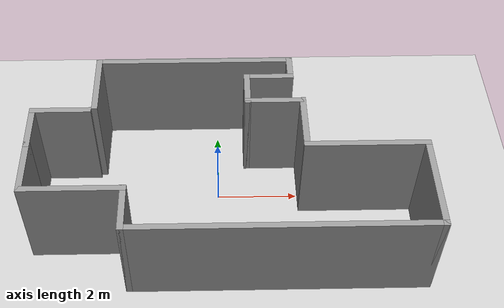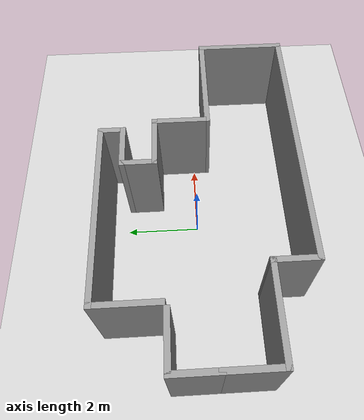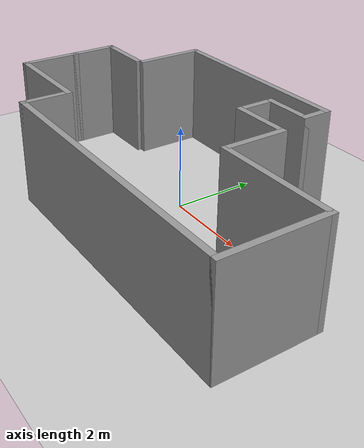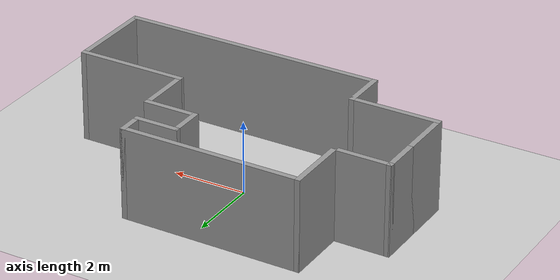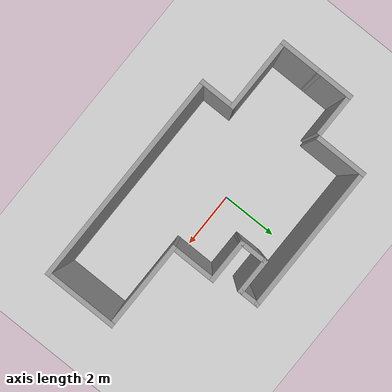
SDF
<sdf version="1.6">
 <world name="default">
  <light name="sun" type="directional">
   <pose>0 0 10 0 -0 0</pose>
   <diffuse>0.8 0.8 0.8 1</diffuse>
   <specular>0.1 0.1 0.1 1</specular>
   <attenuation>
    <range>1000</range>
    <constant>0.9</constant>
    <linear>0.01</linear>
    <quadratic>0.001</quadratic>
   </attenuation>
   <direction>-0.5 0.5 -1</direction>
  </light>
  <model name="ground_plane">
   <static>1</static>
   <link name="link">
    <collision name="collision">
     <geometry><plane><normal>0 0 1</normal><size>100 100</size></plane></geometry>
     <surface><friction><ode><mu>100</mu><mu2>50</mu2></ode></friction></surface>
    </collision>
    <visual name="visual">
     <cast_shadows>0</cast_shadows>
     <geometry><plane><normal>0 0 1</normal><size>100 100</size></plane></geometry>
     <material>
      <script><uri>file://media/materials/scripts/gazebo.material</uri><name>Gazebo/Grey</name></script>
     </material>
    </visual>
   </link>
  </model>
  <gravity>0 0 -9.8</gravity>
  <magnetic_field>6e-06 2.3e-05 -4.2e-05</magnetic_field>
  <atmosphere type="adiabatic"/>
  <physics name="default_physics" default="0" type="ode">
   <max_step_size>0.001</max_step_size>
   <real_time_factor>1</real_time_factor>
   <real_time_update_rate>1000</real_time_update_rate>
  </physics>
  <scene><ambient>0.4 0.4 0.4 1</ambient><background>0.7 0.7 0.7 1</background><shadows>1</shadows></scene>
  <spherical_coordinates>
   <surface_model>EARTH_WGS84</surface_model>
   <latitude_deg>0</latitude_deg>
   <longitude_deg>0</longitude_deg>
   <elevation>0</elevation>
   <heading_deg>0</heading_deg>
  </spherical_coordinates>
  <model name="Untitled">
   <pose>0.227141 -0.119017 0 0 -0 0</pose>
   <link name="Wall_10">
    <collision name="Wall_10_Collision">
     <geometry><box><size>1.25 0.15 2.5</size></box></geometry>
     <pose>0 0 1.25 0 -0 0</pose>
    </collision>
    <visual name="Wall_10_Visual">
     <pose>0 0 1.25 0 -0 0</pose>
     <geometry><box><size>1.25 0.15 2.5</size></box></geometry>
     <material>
      <script><uri>file://media/materials/scripts/gazebo.material</uri><name>Gazebo/Grey</name></script>
      <ambient>1 1 1 1</ambient>
     </material>
    </visual>
    <pose>-4.725 0.375 0 0 -0 1.5708</pose>
   </link>
   <link name="Wall_11">
    <collision name="Wall_11_Collision">
     <geometry><box><size>1.5 0.15 2.5</size></box></geometry>
     <pose>0 0 1.25 0 -0 0</pose>
    </collision>
    <visual name="Wall_11_Visual">
     <pose>0 0 1.25 0 -0 0</pose>
     <geometry><box><size>1.5 0.15 2.5</size></box></geometry>
     <material>
      <script><uri>file://media/materials/scripts/gazebo.material</uri><name>Gazebo/Grey</name></script>
      <ambient>1 1 1 1</ambient>
     </material>
    </visual>
    <pose>-4.05 0.925 0 0 -0 0</pose>
   </link>
   <link name="Wall_13">
    <collision name="Wall_13_Collision">
     <geometry><box><size>1.5 0.15 2.5</size></box></geometry>
     <pose>0 0 1.25 0 -0 0</pose>
    </collision>
    <visual name="Wall_13_Visual">
     <pose>0 0 1.25 0 -0 0</pose>
     <geometry><box><size>1.5 0.15 2.5</size></box></geometry>
     <material>
      <script><uri>file://media/materials/scripts/gazebo.material</uri><name>Gazebo/Grey</name></script>
      <ambient>1 1 1 1</ambient>
     </material>
    </visual>
    <pose>-4.725 -0.85 0 0 0 -1.5708</pose>
   </link>
   <link name="Wall_14">
    <collision name="Wall_14_Collision">
     <geometry><box><size>2.5 0.15 2.5</size></box></geometry>
     <pose>0 0 1.25 0 -0 0</pose>
    </collision>
    <visual name="Wall_14_Visual">
     <pose>0 0 1.25 0 -0 0</pose>
     <geometry><box><size>2.5 0.15 2.5</size></box></geometry>
     <material>
      <script><uri>file://media/materials/scripts/gazebo.material</uri><name>Gazebo/Grey</name></script>
      <ambient>1 1 1 1</ambient>
     </material>
    </visual>
    <pose>-3.55 -1.525 0 0 -0 0</pose>
   </link>
   <link name="Wall_16">
    <collision name="Wall_16_Collision">
     <geometry><box><size>1.25 0.15 2.5</size></box></geometry>
     <pose>0 0 1.25 0 -0 0</pose>
    </collision>
    <visual name="Wall_16_Visual">
     <pose>0 0 1.25 0 -0 0</pose>
     <geometry><box><size>1.25 0.15 2.5</size></box></geometry>
     <material>
      <script><uri>file://media/materials/scripts/gazebo.material</uri><name>Gazebo/Grey</name></script>
      <ambient>1 1 1 1</ambient>
     </material>
    </visual>
    <pose>-2.375 -2.075 0 0 0 -1.5708</pose>
   </link>
   <link name="Wall_17">
    <collision name="Wall_17_Collision">
     <geometry><box><size>7.25 0.15 2.5</size></box></geometry>
     <pose>0 0 1.25 0 -0 0</pose>
    </collision>
    <visual name="Wall_17_Visual">
     <pose>0 0 1.25 0 -0 0</pose>
     <geometry><box><size>7.25 0.15 2.5</size></box></geometry>
     <material>
      <script><uri>file://media/materials/scripts/gazebo.material</uri><name>Gazebo/Grey</name></script>
      <ambient>1 1 1 1</ambient>
     </material>
    </visual>
    <pose>1.175 -2.625 0 0 -0 0</pose>
   </link>
   <link name="Wall_18">
    <collision name="Wall_18_Collision">
     <geometry><box><size>2.5 0.15 2.5</size></box></geometry>
     <pose>0 0 1.25 0 -0 0</pose>
    </collision>
    <visual name="Wall_18_Visual">
     <pose>0 0 1.25 0 -0 0</pose>
     <geometry><box><size>2.5 0.15 2.5</size></box></geometry>
     <material>
      <script><uri>file://media/materials/scripts/gazebo.material</uri><name>Gazebo/Grey</name></script>
      <ambient>1 1 1 1</ambient>
     </material>
    </visual>
    <pose>4.725 -1.45 0 0 -0 1.5708</pose>
   </link>
   <link name="Wall_19">
    <collision name="Wall_19_Collision">
     <geometry><box><size>3 0.15 2.5</size></box></geometry>
     <pose>0 0 1.25 0 -0 0</pose>
    </collision>
    <visual name="Wall_19_Visual">
     <pose>0 0 1.25 0 -0 0</pose>
     <geometry><box><size>3 0.15 2.5</size></box></geometry>
     <material>
      <script><uri>file://media/materials/scripts/gazebo.material</uri><name>Gazebo/Grey</name></script>
      <ambient>1 1 1 1</ambient>
     </material>
    </visual>
    <pose>3.3 -0.275 0 0 -0 3.14159</pose>
   </link>
   <link name="Wall_2">
    <collision name="Wall_2_Collision">
     <geometry><box><size>1.75 0.15 2.5</size></box></geometry>
     <pose>0 0 1.25 0 -0 0</pose>
    </collision>
    <visual name="Wall_2_Visual">
     <pose>0 0 1.25 0 -0 0</pose>
     <geometry><box><size>1.75 0.15 2.5</size></box></geometry>
     <material>
      <script><uri>file://media/materials/scripts/gazebo.material</uri><name>Gazebo/Grey</name></script>
      <ambient>1 1 1 1</ambient>
     </material>
    </visual>
    <pose>-3.225 1.825 0 0 -0 1.5708</pose>
   </link>
   <link name="Wall_3">
    <collision name="Wall_3_Collision">
     <geometry><box><size>5 0.15 2.5</size></box></geometry>
     <pose>0 0 1.25 0 -0 0</pose>
    </collision>
    <visual name="Wall_3_Visual">
     <pose>0 0 1.25 0 -0 0</pose>
     <geometry><box><size>5 0.15 2.5</size></box></geometry>
     <material>
      <script><uri>file://media/materials/scripts/gazebo.material</uri><name>Gazebo/Grey</name></script>
      <ambient>1 1 1 1</ambient>
     </material>
    </visual>
    <pose>-0.8 2.625 0 0 -0 0</pose>
   </link>
   <link name="Wall_4">
    <collision name="Wall_4_Collision">
     <geometry><box><size>0.75 0.15 2.5</size></box></geometry>
     <pose>0 0 1.25 0 -0 0</pose>
    </collision>
    <visual name="Wall_4_Visual">
     <pose>0 0 1.25 0 -0 0</pose>
     <geometry><box><size>0.75 0.15 2.5</size></box></geometry>
     <material>
      <script><uri>file://media/materials/scripts/gazebo.material</uri><name>Gazebo/Grey</name></script>
      <ambient>1 1 1 1</ambient>
     </material>
    </visual>
    <pose>1.625 2.325 0 0 0 -1.5708</pose>
   </link>
   <link name="Wall_5">
    <collision name="Wall_5_Collision">
     <geometry><box><size>1.25 0.15 2.5</size></box></geometry>
     <pose>0 0 1.25 0 -0 0</pose>
    </collision>
    <visual name="Wall_5_Visual">
     <pose>0 0 1.25 0 -0 0</pose>
     <geometry><box><size>1.25 0.15 2.5</size></box></geometry>
     <material>
      <script><uri>file://media/materials/scripts/gazebo.material</uri><name>Gazebo/Grey</name></script>
      <ambient>1 1 1 1</ambient>
     </material>
    </visual>
    <pose>1.075 2.025 0 0 -0 3.14159</pose>
   </link>
   <link name="Wall_6">
    <collision name="Wall_6_Collision">
     <geometry><box><size>1 0.15 2.5</size></box></geometry>
     <pose>0 0 1.25 0 -0 0</pose>
    </collision>
    <visual name="Wall_6_Visual">
     <pose>0 0 1.25 0 -0 0</pose>
     <geometry><box><size>1 0.15 2.5</size></box></geometry>
     <material>
      <script><uri>file://media/materials/scripts/gazebo.material</uri><name>Gazebo/Grey</name></script>
      <ambient>1 1 1 1</ambient>
     </material>
    </visual>
    <pose>0.525 1.6 0 0 0 -1.5708</pose>
   </link>
   <link name="Wall_7">
    <collision name="Wall_7_Collision">
     <geometry><box><size>1.5 0.15 2.5</size></box></geometry>
     <pose>0 0 1.25 0 -0 0</pose>
    </collision>
    <visual name="Wall_7_Visual">
     <pose>0 0 1.25 0 -0 0</pose>
     <geometry><box><size>1.5 0.15 2.5</size></box></geometry>
     <material>
      <script><uri>file://media/materials/scripts/gazebo.material</uri><name>Gazebo/Grey</name></script>
      <ambient>1 1 1 1</ambient>
     </material>
    </visual>
    <pose>1.2 1.175 0 0 -0 0</pose>
   </link>
   <link name="Wall_8">
    <collision name="Wall_8_Collision">
     <geometry><box><size>1.5 0.15 2.5</size></box></geometry>
     <pose>0 0 1.25 0 -0 0</pose>
    </collision>
    <visual name="Wall_8_Visual">
     <pose>0 0 1.25 0 -0 0</pose>
     <geometry><box><size>1.5 0.15 2.5</size></box></geometry>
     <material>
      <script><uri>file://media/materials/scripts/gazebo.material</uri><name>Gazebo/Grey</name></script>
      <ambient>1 1 1 1</ambient>
     </material>
    </visual>
    <pose>1.875 0.5 0 0 0 -1.5708</pose>
   </link>
   <static>1</static>
  </model>
 </world>
</sdf>
